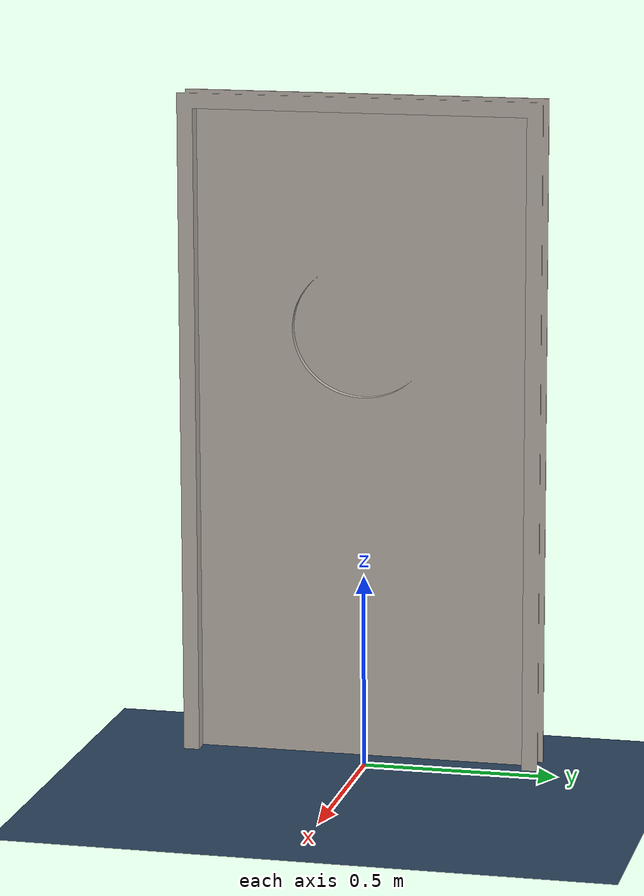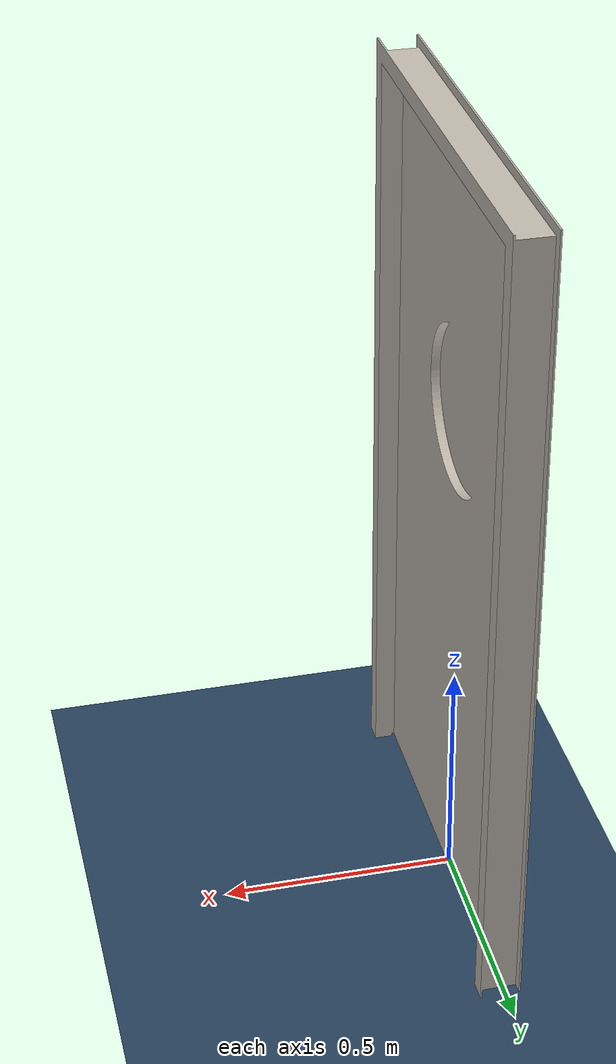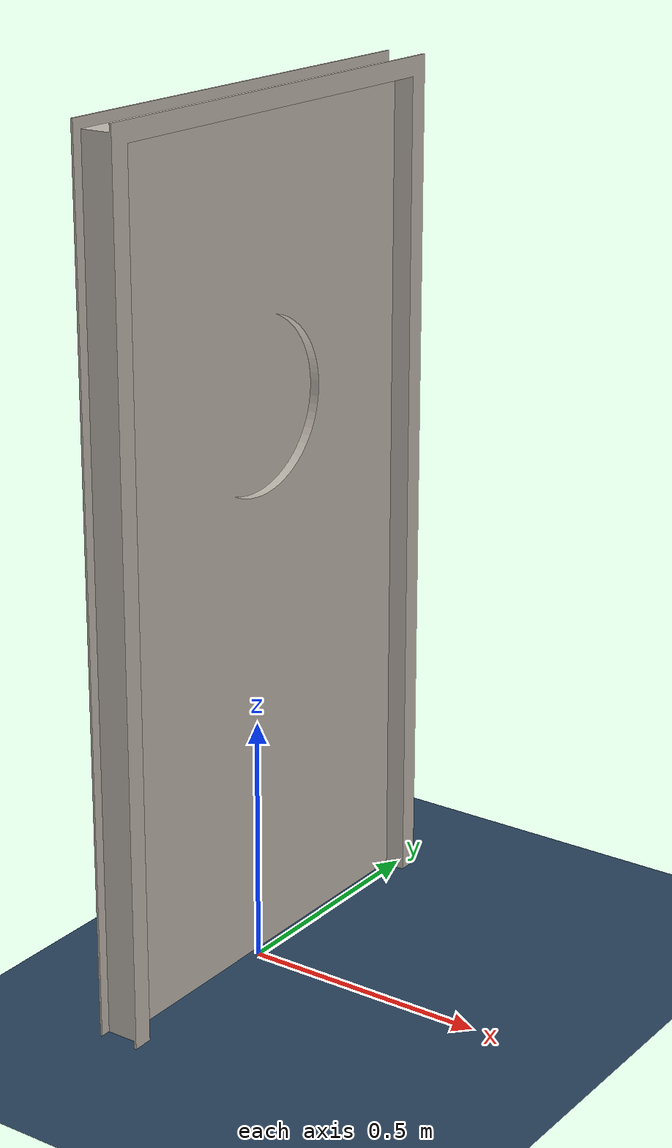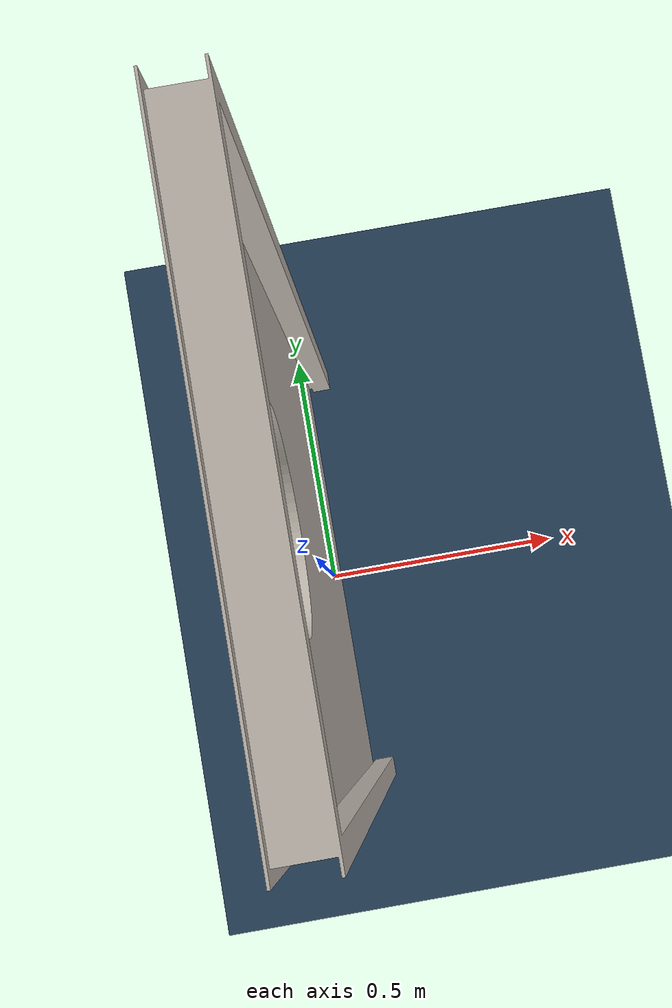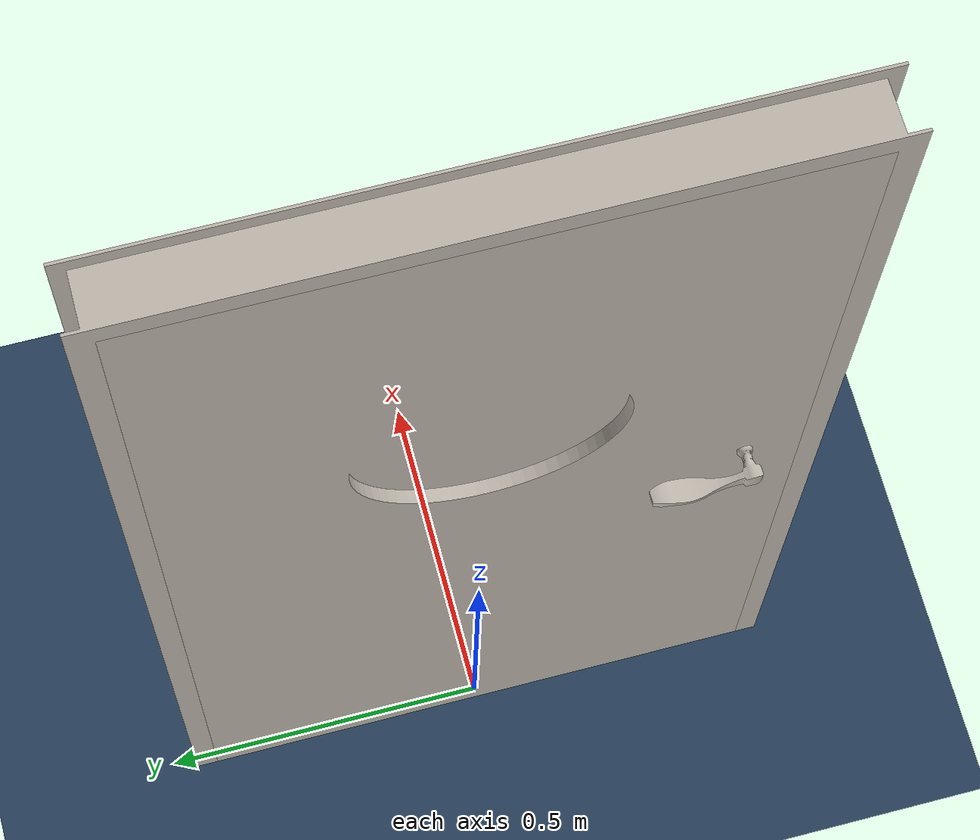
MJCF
<mujoco model="fridge">
  <compiler angle="radian" meshdir="texture_stl/"/>

  <visual>
    <headlight diffuse="0.6 0.6 0.6" ambient="0.3 0.3 0.3" specular="0 0 0"/>
    <rgba haze="0.15 0.25 0.35 1"/>
    <global azimuth="-20" elevation="-20" ellipsoidinertia="true"/>
  </visual>

  <asset>
    <texture type="skybox" builtin="gradient" rgb1="0.3 0.5 0.7" rgb2="0 0 0" width="512" height="3072"/>
    <texture type="2d" name="groundplane" builtin="checker" mark="edge" rgb1="0.2 0.3 0.4" rgb2="0.1 0.2 0.3"
      markrgb="0.8 0.8 0.8" width="300" height="300"/>
    <texture name="door_texture" type="cube" file="texture_stl/texture_0.png"/>
    <texture name="handle_texture" type="2d" file="texture_stl/texture_1.png"/>
    <material name="door_material" texture="door_texture"/>
    <material name="handle_material" texture="handle_texture"/>
    <material name="groundplane" texture="groundplane" texuniform="true" texrepeat="5 5" reflectance="0.2"/>

    <mesh name="frame" file="frame.stl" scale="0.7727926928934716 0.7727926928934716 0.7727926928934716"/>
    <mesh name="board" file="board.stl" scale="0.7727926928934716 0.7727926928934716 0.7727926928934716"/>
    <mesh name="9960006" file="9960006.stl" scale="2.168468561311864 2.168468561311864 2.168468561311864"/>
  </asset>

  <worldbody>
    <light pos="0 0 1.5" dir="0 0 -1" directional="true"/>
    <geom name="floor" size="0 0 0.05" type="plane" material="groundplane"/>
    <body name="door" euler="0 1.57 0" pos="0 0 0.88">
      <geom name="frame" pos="0 0 0" quat="0.5 0.5 -0.5 -0.5" type="mesh" mesh="frame" material="door_material" conaffinity="0" contype="0"/>
      <body name="link_1" pos="0 0.43107872977436495 0" quat="0.5 0.5 -0.5 -0.5">
        <inertial pos="0 0 0" mass="10.0" diaginertia="5.0 5.0 5.0"/>
        <joint name="joint_1" pos="0 0 0" axis="0 0 -1" range="0 1.50796"/>
        <geom name="board" pos="0.43107872977436495 0 0" quat="1 0 0 0" type="mesh" mesh="board" material="door_material"/>
        <body name="link_2" pos="0.7828395534710215 -0.02 0.015916213578276408">
          <joint name="joint_2" pos="0 0 0" axis="0 1 0" range="-1.50796 1.50796" stiffness="2.0" damping="0.1"/>
          <geom name="handle" type="mesh" mesh="9960006" material="handle_material"/>
        </body>
      </body>
    </body>
  </worldbody>
</mujoco>
